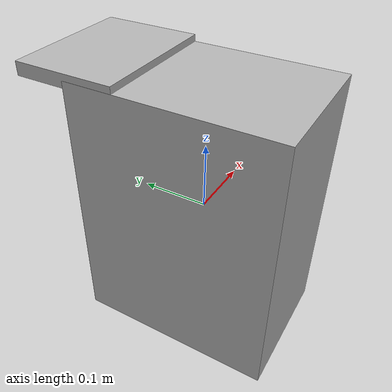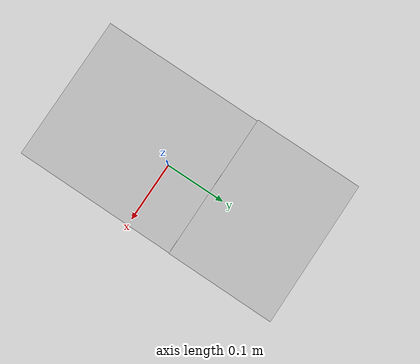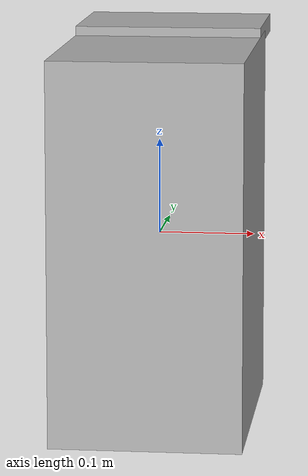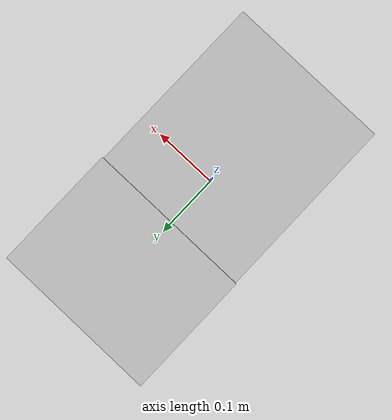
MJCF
<?xml version="1.0" encoding="utf-8"?>
<mujoco>
    <asset>
        <material name="machine_metal" rgba="0.7 0.7 0.7 1"/>
    </asset>

    <worldbody>
        <body>
            <body name="machine_main">
                <geom type="box" size="0.1 0.15 0.2" material="machine_metal"/>
            </body>
            <body name="lid" pos="0 0.15 0.2">
                <joint type="hinge" name="lid_joint" axis="1 0 0" limited="true" range="0 1.57"/>
                <geom type="box" size="0.1 0.075 0.01" material="machine_metal"/>
            </body>
            <body name="holder" pos="0 0 0.1">
                <joint type="slide" name="holder_joint" axis="0 1 0" limited="true" range="-0.2 0"/>
                <geom type="box" size="0.05 0.075 0.02" material="machine_metal"/>
            </body>
        </body>
    </worldbody>
</mujoco>
